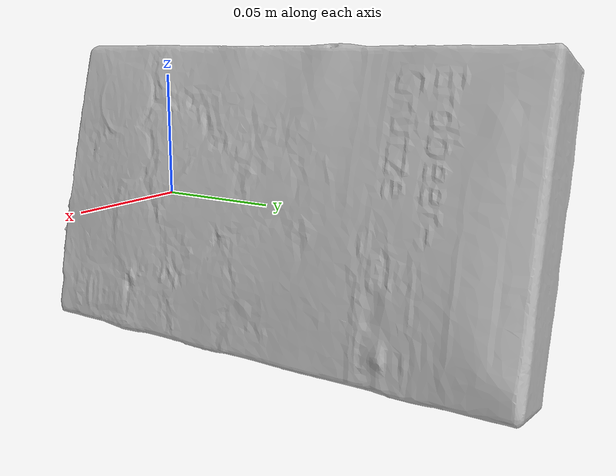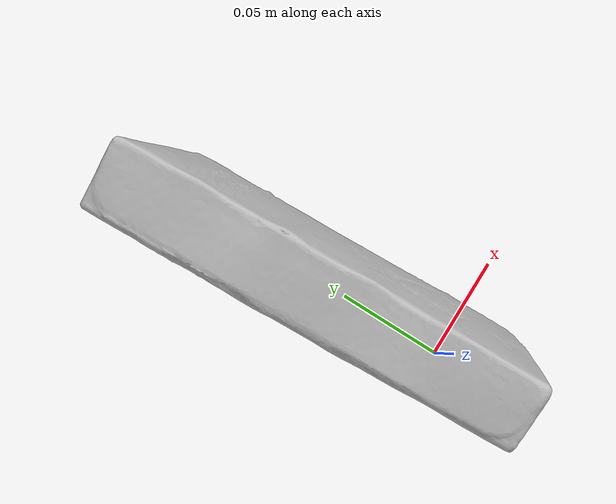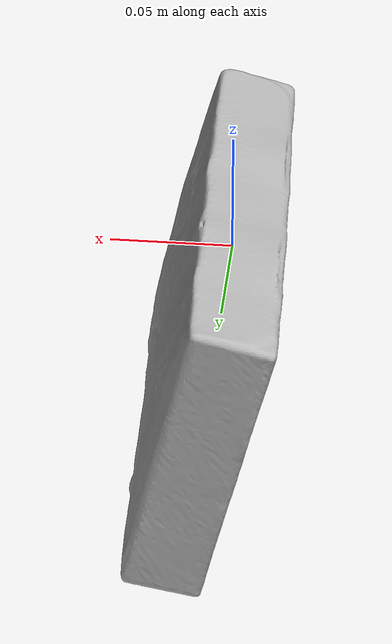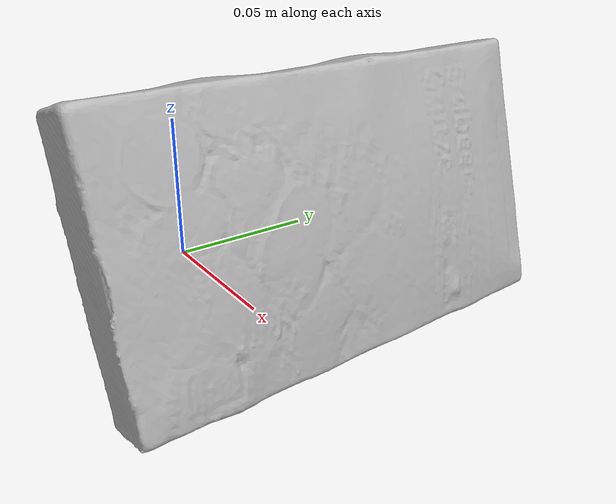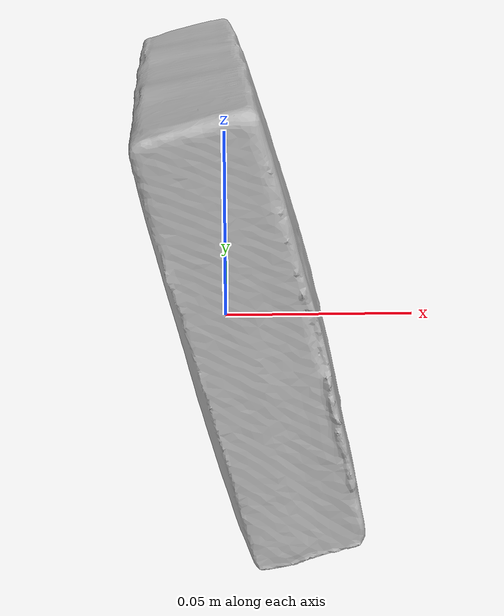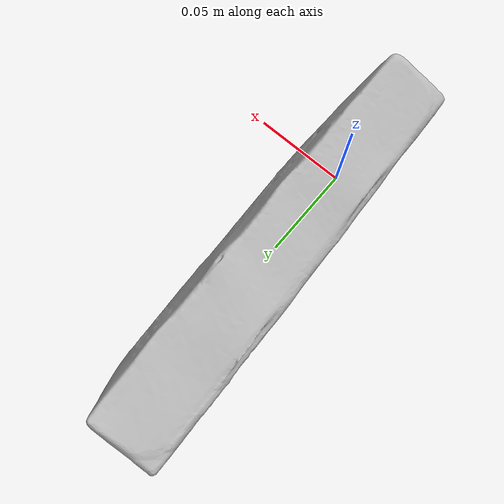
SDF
<?xml version='1.0'?>
<sdf version="1.4">
  <model name="StrawberryPorridge">
    <static>false</static>
    <link name="link">
      <inertial>
        <pose>0.003145295556155414 0.06221771365454175 0.003041503280838601 1.5717793396680397 0.24759156455192155 -3.105907051842958</pose>
        <mass>0.0839120016592681</mass>
        <inertia>
          <ixx>0.00035828071865640966</ixx>
          <ixy>-2.1452066868928324e-20</ixy>
          <ixz>-4.170158078027543e-22</ixz>
          <iyy>0.0002753108248126377</iyy>
          <iyz>3.829209501086688e-22</iyz>
          <izz>0.00010126948549414419</izz>
        </inertia>
      </inertial>
      <collision name="collision">
        <geometry>
          <mesh>
            <!-- Use a downsampled mesh for collisions -->
            <uri>model:///StrawberryPorridge/StrawberryPorridge_250_collision.obj</uri>
	        </mesh>
        </geometry>
        <surface>
      </surface>
      </collision>
      <visual name="visual">
        <geometry>
          <mesh>
            <uri>model:///StrawberryPorridge/StrawberryPorridge_25k_tex.obj</uri>
	        </mesh>
        </geometry>
        <material>
          <script>
            <uri>model:///StrawberryPorridge/StrawberryPorridge.material</uri>
            <name>StrawberryPorridge</name>
          </script>
        </material>
      </visual>
    </link>
  </model>
</sdf>
